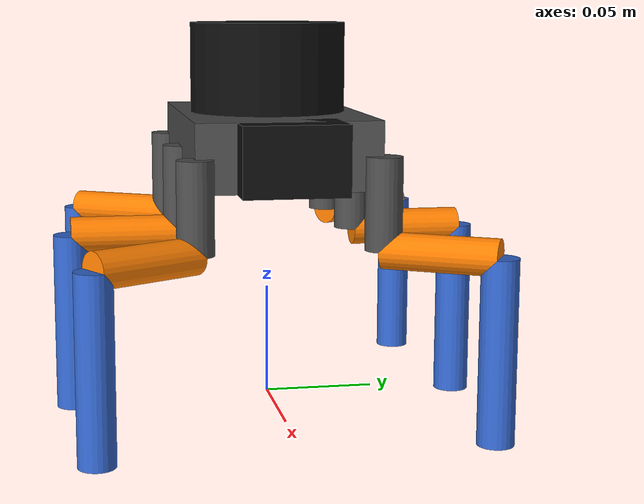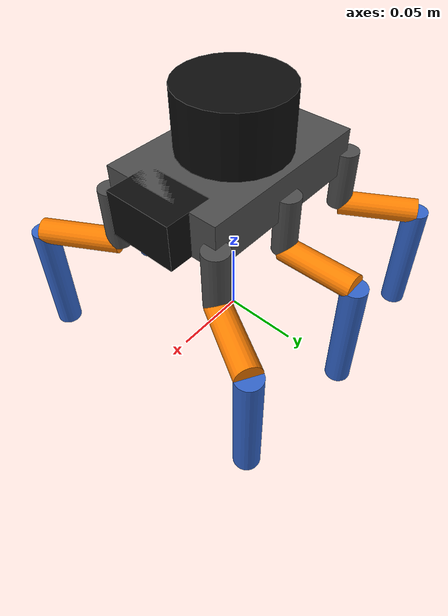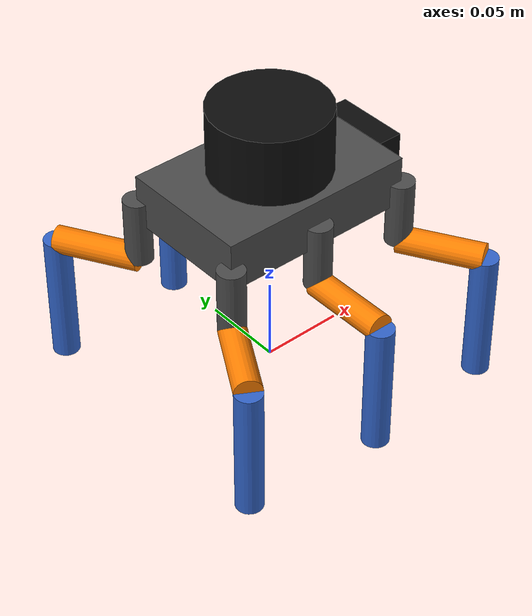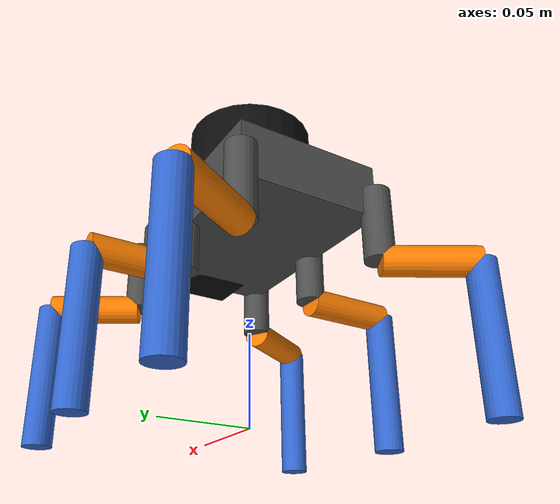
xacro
<?xml version="1.0"?>
<robot xmlns:xacro="http://www.ros.org/wiki/xacro" name="seeker_hexapod">

  <!-- Materials                                                           -->
  <material name="dark_grey"><color rgba="0.3 0.3 0.3 1.0"/></material>
  <material name="orange">   <color rgba="1.0 0.5 0.0 1.0"/></material>
  <material name="blue">     <color rgba="0.2 0.4 0.8 1.0"/></material>
  <material name="black">    <color rgba="0.05 0.05 0.05 1.0"/></material>

  <!-- Parameters                                                          -->
  <xacro:property name="body_x"    value="0.120"/>
  <xacro:property name="body_y"    value="0.080"/>
  <xacro:property name="body_z"    value="0.030"/>
  <xacro:property name="body_mass" value="1.5"/>

  <xacro:property name="coxa_len"  value="0.040"/>
  <xacro:property name="femur_len" value="0.050"/>
  <xacro:property name="tibia_len" value="0.080"/>
  <xacro:property name="leg_r"     value="0.008"/>
  <xacro:property name="leg_mass"  value="0.040"/>

  <xacro:property name="hip_lo"  value="-1.047"/>
  <xacro:property name="hip_hi"  value=" 1.047"/>
  <xacro:property name="knee_lo" value="0.000"/>
  <xacro:property name="knee_hi" value="1.571"/>

  <xacro:property name="lidar_r" value="0.035"/>
  <xacro:property name="lidar_h" value="0.040"/>
  <xacro:property name="lidar_m" value="0.100"/>
  <xacro:property name="cam_s"   value="0.030"/>
  <xacro:property name="cam_m"   value="0.050"/>

  <!-- Inertia helpers                                                     -->
  <xacro:macro name="box_inertia" params="m x y z">
    <inertial>
      <mass value="${m}"/>
      <inertia ixx="${m*(y*y+z*z)/12}" ixy="0" ixz="0"
               iyy="${m*(x*x+z*z)/12}" iyz="0"
               izz="${m*(x*x+y*y)/12}"/>
    </inertial>
  </xacro:macro>

  <xacro:macro name="cyl_inertia" params="m r h">
    <inertial>
      <mass value="${m}"/>
      <inertia ixx="${m*(3*r*r+h*h)/12}" ixy="0" ixz="0"
               iyy="${m*(3*r*r+h*h)/12}" iyz="0"
               izz="${m*r*r/2}"/>
    </inertial>
  </xacro:macro>

  <!-- Leg macro                                                           -->
  <!--   name         : fl | fr | ml | mr | rl | rr                      -->
  <!--   mount_x/y    : hip joint XY position on body (metres)            -->
  <!--   mount_angle  : outward facing direction (radians from body +X)   -->
  <xacro:macro name="leg" params="name mount_x mount_y mount_angle">

    <!-- Coxa: short vertical stub from body to hip joint -->
    <link name="leg_${name}_coxa_link">
      <visual>
        <geometry><cylinder radius="${leg_r}" length="${coxa_len}"/></geometry>
        <origin xyz="0 0 ${-coxa_len/2}" rpy="0 0 0"/>
        <material name="dark_grey"/>
      </visual>
      <collision>
        <geometry><cylinder radius="${leg_r}" length="${coxa_len}"/></geometry>
        <origin xyz="0 0 ${-coxa_len/2}" rpy="0 0 0"/>
      </collision>
      <xacro:cyl_inertia m="${leg_mass}" r="${leg_r}" h="${coxa_len}"/>
    </link>

    <!-- hip_joint: revolute around Z — swings the femur forward / backward -->
    <joint name="leg_${name}_hip_joint" type="revolute">
      <parent link="base_link"/>
      <child  link="leg_${name}_coxa_link"/>
      <origin xyz="${mount_x} ${mount_y} 0" rpy="0 0 ${mount_angle}"/>
      <axis xyz="0 0 1"/>
      <limit lower="${hip_lo}" upper="${hip_hi}" effort="3.0" velocity="3.14"/>
      <dynamics damping="0.1" friction="0.0"/>
    </joint>

    <!-- Femur: horizontal link, always parallel to the ground -->
    <link name="leg_${name}_femur_link">
      <visual>
        <!-- cylinder default axis is Z; rotate 90° around Y → points along X -->
        <geometry><cylinder radius="${leg_r}" length="${femur_len}"/></geometry>
        <origin xyz="${femur_len/2} 0 ${-coxa_len}" rpy="0 ${pi/2} 0"/>
        <material name="orange"/>
      </visual>
      <collision>
        <geometry><cylinder radius="${leg_r}" length="${femur_len}"/></geometry>
        <origin xyz="${femur_len/2} 0 ${-coxa_len}" rpy="0 ${pi/2} 0"/>
      </collision>
      <xacro:cyl_inertia m="${leg_mass}" r="${leg_r}" h="${femur_len}"/>
    </link>

    <!-- femur_joint: FIXED — femur is always horizontal (locked by design) -->
    <joint name="leg_${name}_femur_joint" type="fixed">
      <parent link="leg_${name}_coxa_link"/>
      <child  link="leg_${name}_femur_link"/>
      <origin xyz="0 0 0" rpy="0 0 0"/>
    </joint>

    <!-- Tibia: lower leg, hangs from the knee and pitches down/up -->
    <link name="leg_${name}_tibia_link">
      <visual>
        <geometry><cylinder radius="${leg_r}" length="${tibia_len}"/></geometry>
        <origin xyz="0 0 ${-tibia_len/2}" rpy="0 0 0"/>
        <material name="blue"/>
      </visual>
      <collision>
        <geometry><sphere radius="${leg_r}"/></geometry>
        <origin xyz="0 0 ${-tibia_len}" rpy="0 0 0"/>
      </collision>
      <xacro:cyl_inertia m="${leg_mass}" r="${leg_r}" h="${tibia_len}"/>
    </link>

    <joint name="leg_${name}_knee_joint" type="revolute">
      <parent link="leg_${name}_femur_link"/>
      <child  link="leg_${name}_tibia_link"/>
      <origin xyz="${femur_len} 0 ${-coxa_len}" rpy="0 0 0"/>
      <axis xyz="0 -1 0"/>
      <limit lower="${knee_lo}" upper="${knee_hi}" effort="5.0" velocity="3.14"/>
      <dynamics damping="0.1" friction="0.0"/>
    </joint>

    <!-- Gazebo joint position controller — hip -->
    <gazebo>
      <plugin filename="gz-sim-joint-position-controller-system"
              name="gz::sim::systems::JointPositionController">
        <joint_name>leg_${name}_hip_joint</joint_name>
        <topic>/model/seeker/joint/leg_${name}_hip_joint/0/cmd_pos</topic>
        <p_gain>200</p_gain>
        <i_gain>0.2</i_gain>
        <d_gain>2.0</d_gain>
      </plugin>
    </gazebo>

    <!-- Gazebo joint position controller — knee -->
    <gazebo>
      <plugin filename="gz-sim-joint-position-controller-system"
              name="gz::sim::systems::JointPositionController">
        <joint_name>leg_${name}_knee_joint</joint_name>
        <topic>/model/seeker/joint/leg_${name}_knee_joint/0/cmd_pos</topic>
        <p_gain>200</p_gain>
        <i_gain>0.2</i_gain>
        <d_gain>2.0</d_gain>
      </plugin>
    </gazebo>

    <!-- Foot contact: compliant surface reduces jitter from rigid multi-contact -->
    <gazebo reference="leg_${name}_tibia_link">
      <collision>
        <surface>
          <friction>
            <ode>
              <mu>1.0</mu>
              <mu2>1.0</mu2>
            </ode>
          </friction>
          <contact>
            <ode>
              <kp>1e4</kp>
              <kd>40</kd>
            </ode>
          </contact>
        </surface>
      </collision>
    </gazebo>

  </xacro:macro>

  <!-- base_footprint — ground projection (required by Nav2)              -->
  <!-- Height = coxa_len + tibia_len*cos(NEUTRAL_KNEE)                    -->
  <!--        = coxa_len + tibia_len*cos(30°) + leg_r = 40 + 69.3 + 8 = 117.3mm -->
  <!-- This puts base_link at the correct height above the ground when    -->
  <!-- all legs are at the neutral standing pose (knee = 30°).            -->
  <!-- Update this value whenever NEUTRAL_KNEE changes in fake_mcu_node.  -->
  <!-- Formula: coxa_len + tibia_len*cos(NEUTRAL_KNEE)                    -->
  <link name="base_footprint"/>
  <joint name="base_footprint_joint" type="fixed">
    <parent link="base_footprint"/>
    <child  link="base_link"/>
    <origin xyz="0 0 0.117" rpy="0 0 0"/>
  </joint>

  <!-- base_link — main chassis                                           -->
  <link name="base_link">
    <visual>
      <geometry><box size="${body_x} ${body_y} ${body_z}"/></geometry>
      <material name="dark_grey"/>
    </visual>
    <collision>
      <geometry><box size="${body_x} ${body_y} ${body_z}"/></geometry>
    </collision>
    <xacro:box_inertia m="${body_mass}" x="${body_x}" y="${body_y}" z="${body_z}"/>
  </link>

  <!-- Legs (mount positions from HexapodConfig.h: half-len=60mm, half-w=40mm) -->
  <xacro:leg name="fl" mount_x=" 0.060" mount_y=" 0.040" mount_angle=" 1.047"/>
  <xacro:leg name="fr" mount_x=" 0.060" mount_y="-0.040" mount_angle="-1.047"/>
  <xacro:leg name="ml" mount_x=" 0.000" mount_y=" 0.040" mount_angle=" 1.571"/>
  <xacro:leg name="mr" mount_x=" 0.000" mount_y="-0.040" mount_angle="-1.571"/>
  <xacro:leg name="rl" mount_x="-0.060" mount_y=" 0.040" mount_angle=" 2.094"/>
  <xacro:leg name="rr" mount_x="-0.060" mount_y="-0.040" mount_angle="-2.094"/>

  <!-- LiDAR — LD14P 360°, top-mounted                                   -->
  <link name="lidar_link">
    <visual>
      <geometry><cylinder radius="${lidar_r}" length="${lidar_h}"/></geometry>
      <origin xyz="0 0 ${lidar_h/2}" rpy="0 0 0"/>
      <material name="black"/>
    </visual>
    <collision>
      <geometry><cylinder radius="${lidar_r}" length="${lidar_h}"/></geometry>
      <origin xyz="0 0 ${lidar_h/2}" rpy="0 0 0"/>
    </collision>
    <xacro:cyl_inertia m="${lidar_m}" r="${lidar_r}" h="${lidar_h}"/>
  </link>
  <joint name="lidar_joint" type="fixed">
    <parent link="base_link"/>
    <child  link="lidar_link"/>
    <!-- Physical LD14P is mounted with its 0° mark pointing toward the
         rear of the chassis, so rotate the LiDAR frame 180° about Z to
         keep "lidar_link +X" == "base_link forward". -->
    <origin xyz="0 0 ${body_z/2}" rpy="0 0 ${pi}"/>
  </joint>

  <!-- Gazebo LiDAR sensor → /gz/scan, bridged to /mcu/scan -->
  <gazebo reference="lidar_link">
    <sensor name="lidar_sensor" type="gpu_lidar">
      <gz_frame_id>lidar_link</gz_frame_id>
      <topic>/gz/scan</topic>
      <update_rate>10</update_rate>
      <always_on>true</always_on>
      <visualize>true</visualize>
      <lidar>
        <scan>
          <horizontal>
            <samples>720</samples>
            <resolution>1</resolution>
            <min_angle>0</min_angle>
            <max_angle>6.283185</max_angle>
          </horizontal>
          <vertical>
            <samples>1</samples>
            <resolution>1</resolution>
            <min_angle>0</min_angle>
            <max_angle>0</max_angle>
          </vertical>
        </scan>
        <range>
          <min>0.10</min>
          <max>8.00</max>
          <resolution>0.001</resolution>
        </range>
        <noise>
          <type>gaussian</type>
          <mean>0.0</mean>
          <stddev>0.005</stddev>
        </noise>
      </lidar>
    </sensor>
  </gazebo>

  <!-- Camera — front-mounted                                              -->
  <link name="camera_link">
    <visual>
      <geometry><box size="${cam_s} ${cam_s*1.5} ${cam_s}"/></geometry>
      <material name="black"/>
    </visual>
    <collision>
      <geometry><box size="${cam_s} ${cam_s*1.5} ${cam_s}"/></geometry>
    </collision>
    <xacro:box_inertia m="${cam_m}" x="${cam_s}" y="${cam_s*1.5}" z="${cam_s}"/>
  </link>
  <joint name="camera_joint" type="fixed">
    <parent link="base_link"/>
    <child  link="camera_link"/>
    <origin xyz="${body_x/2} 0 0" rpy="0 0 0"/>
  </joint>

  <link name="camera_optical_frame"/>
  <joint name="camera_optical_joint" type="fixed">
    <parent link="camera_link"/>
    <child  link="camera_optical_frame"/>
    <origin xyz="0 0 0" rpy="${-pi/2} 0 ${-pi/2}"/>
  </joint>

  <gazebo reference="camera_link">
    <sensor name="camera_sensor" type="camera">
      <gz_frame_id>camera_optical_frame</gz_frame_id>
      <topic>/gz/camera/image</topic>
      <update_rate>15</update_rate>
      <always_on>true</always_on>
      <camera>
        <horizontal_fov>1.396</horizontal_fov>
        <image><width>640</width><height>480</height><format>R8G8B8</format></image>
        <clip><near>0.05</near><far>50</far></clip>
      </camera>
    </sensor>
  </gazebo>

  <!-- IMU — on base_link, → /gz/imu, bridged to /mcu/imu               -->
  <gazebo reference="base_link">
    <sensor name="imu_sensor" type="imu">
      <gz_frame_id>base_link</gz_frame_id>
      <topic>/gz/imu</topic>
      <update_rate>200</update_rate>
      <always_on>true</always_on>
      <imu>
        <angular_velocity>
          <x><noise type="gaussian"><mean>0</mean><stddev>0.009</stddev></noise></x>
          <y><noise type="gaussian"><mean>0</mean><stddev>0.009</stddev></noise></y>
          <z><noise type="gaussian"><mean>0</mean><stddev>0.009</stddev></noise></z>
        </angular_velocity>
        <linear_acceleration>
          <x><noise type="gaussian"><mean>0</mean><stddev>0.021</stddev></noise></x>
          <y><noise type="gaussian"><mean>0</mean><stddev>0.021</stddev></noise></y>
          <z><noise type="gaussian"><mean>0</mean><stddev>0.021</stddev></noise></z>
        </linear_acceleration>
      </imu>
    </sensor>
  </gazebo>

  <!-- Ground-truth odometry plugin                                        -->
  <!-- gz_odom_bridge.py converts /model/seeker/odometry → TF             -->
  <gazebo>
    <plugin filename="gz-sim-odometry-publisher-system"
            name="gz::sim::systems::OdometryPublisher">
      <odom_frame>odom</odom_frame>
      <robot_base_frame>base_footprint</robot_base_frame>
      <odom_topic>/model/seeker/odometry</odom_topic>
      <odom_publish_frequency>50</odom_publish_frequency>
    </plugin>
  </gazebo>

</robot>
